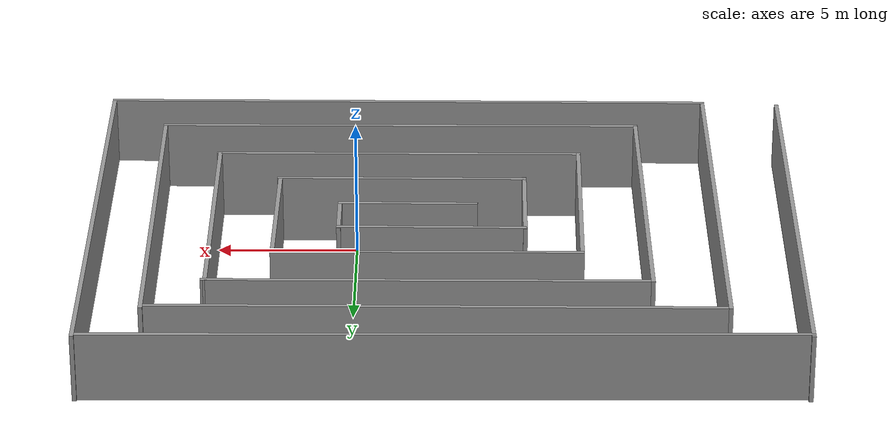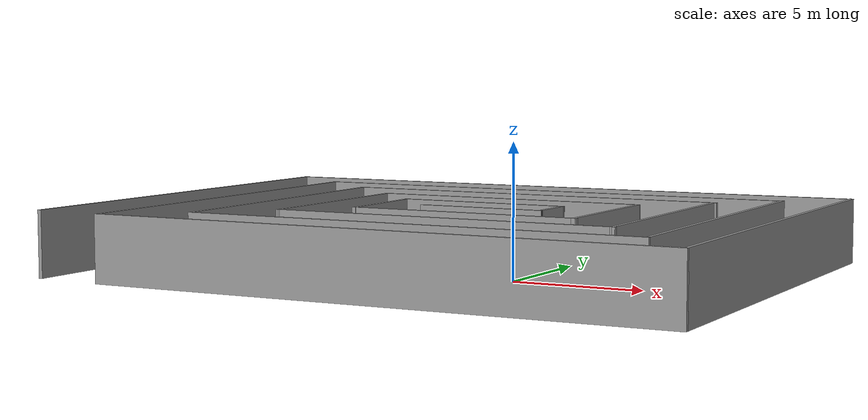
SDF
<sdf version='1.5'>
    <model name='maze1'>
      <pose>-3.13122 1.72991 0 0 -0 0</pose>
      <link name='Wall_0'>
        <collision name='Wall_0_Collision'>
          <geometry>
            <box>
              <size>4.97837 0.15 2.5</size>
            </box>
          </geometry>
          <pose>0 0 1.25 0 -0 0</pose>
          <max_contacts>10</max_contacts>
          <surface>
            <contact>
              <ode/>
            </contact>
            <bounce/>
            <friction>
              <torsional>
                <ode/>
              </torsional>
              <ode/>
            </friction>
          </surface>
        </collision>
        <visual name='Wall_0_Visual'>
          <pose>0 0 1.25 0 -0 0</pose>
          <geometry>
            <box>
              <size>4.97837 0.15 2.5</size>
            </box>
          </geometry>
          <material>
            <script>
              <uri>file://media/materials/scripts/gazebo.material</uri>
              <name>Gazebo/Grey</name>
            </script>
            <ambient>1 1 1 1</ambient>
          </material>
          <meta>
            <layer>0</layer>
          </meta>
        </visual>
        <pose>1.27156 -0.661161 0 0 -0 -0.008379</pose>
        <self_collide>0</self_collide>
        <enable_wind>0</enable_wind>
        <kinematic>0</kinematic>
      </link>
      <link name='Wall_1'>
        <collision name='Wall_1_Collision'>
          <geometry>
            <box>
              <size>2 0.15 2.5</size>
            </box>
          </geometry>
          <pose>0 0 1.25 0 -0 0</pose>
          <max_contacts>10</max_contacts>
          <surface>
            <contact>
              <ode/>
            </contact>
            <bounce/>
            <friction>
              <torsional>
                <ode/>
              </torsional>
              <ode/>
            </friction>
          </surface>
        </collision>
        <visual name='Wall_1_Visual'>
          <pose>0 0 1.25 0 -0 0</pose>
          <geometry>
            <box>
              <size>2 0.15 2.5</size>
            </box>
          </geometry>
          <material>
            <script>
              <uri>file://media/materials/scripts/gazebo.material</uri>
              <name>Gazebo/Grey</name>
            </script>
            <ambient>1 1 1 1</ambient>
          </material>
          <meta>
            <layer>0</layer>
          </meta>
        </visual>
        <pose>3.68566 0.284067 0 0 -0 1.5708</pose>
        <self_collide>0</self_collide>
        <enable_wind>0</enable_wind>
        <kinematic>0</kinematic>
      </link>
      <link name='Wall_10'>
        <collision name='Wall_10_Collision'>
          <geometry>
            <box>
              <size>15.5187 0.15 2.5</size>
            </box>
          </geometry>
          <pose>0 0 1.25 0 -0 0</pose>
          <max_contacts>10</max_contacts>
          <surface>
            <contact>
              <ode/>
            </contact>
            <bounce/>
            <friction>
              <torsional>
                <ode/>
              </torsional>
              <ode/>
            </friction>
          </surface>
        </collision>
        <visual name='Wall_10_Visual'>
          <pose>0 0 1.25 0 -0 0</pose>
          <geometry>
            <box>
              <size>15.5187 0.15 2.5</size>
            </box>
          </geometry>
          <material>
            <script>
              <uri>file://media/materials/scripts/gazebo.material</uri>
              <name>Gazebo/Grey</name>
            </script>
            <ambient>1 1 1 1</ambient>
          </material>
          <meta>
            <layer>0</layer>
          </meta>
        </visual>
        <pose>0.54179 5.17137 0 0 -0 3.14159</pose>
        <self_collide>0</self_collide>
        <enable_wind>0</enable_wind>
        <kinematic>0</kinematic>
      </link>
      <link name='Wall_11'>
        <collision name='Wall_11_Collision'>
          <geometry>
            <box>
              <size>12.2688 0.15 2.5</size>
            </box>
          </geometry>
          <pose>0 0 1.25 0 -0 0</pose>
          <max_contacts>10</max_contacts>
          <surface>
            <contact>
              <ode/>
            </contact>
            <bounce/>
            <friction>
              <torsional>
                <ode/>
              </torsional>
              <ode/>
            </friction>
          </surface>
        </collision>
        <visual name='Wall_11_Visual'>
          <pose>0 0 1.25 0 -0 0</pose>
          <geometry>
            <box>
              <size>12.2688 0.15 2.5</size>
            </box>
          </geometry>
          <material>
            <script>
              <uri>file://media/materials/scripts/gazebo.material</uri>
              <name>Gazebo/Grey</name>
            </script>
            <ambient>1 1 1 1</ambient>
          </material>
          <meta>
            <layer>0</layer>
          </meta>
        </visual>
        <pose>-7.14254 -0.887464 0 0 -0 -1.55737</pose>
        <self_collide>0</self_collide>
        <enable_wind>0</enable_wind>
        <kinematic>0</kinematic>
      </link>
      <link name='Wall_12'>
        <collision name='Wall_12_Collision'>
          <geometry>
            <box>
              <size>17.5585 0.15 2.5</size>
            </box>
          </geometry>
          <pose>0 0 1.25 0 -0 0</pose>
          <max_contacts>10</max_contacts>
          <surface>
            <contact>
              <ode/>
            </contact>
            <bounce/>
            <friction>
              <torsional>
                <ode/>
              </torsional>
              <ode/>
            </friction>
          </surface>
        </collision>
        <visual name='Wall_12_Visual'>
          <pose>0 0 1.25 0 -0 0</pose>
          <geometry>
            <box>
              <size>17.5585 0.15 2.5</size>
            </box>
          </geometry>
          <material>
            <script>
              <uri>file://media/materials/scripts/gazebo.material</uri>
              <name>Gazebo/Grey</name>
            </script>
            <ambient>1 1 1 1</ambient>
          </material>
          <meta>
            <layer>0</layer>
          </meta>
        </visual>
        <pose>1.64305 -7.01745 0 0 -0 0.001174</pose>
        <self_collide>0</self_collide>
        <enable_wind>0</enable_wind>
        <kinematic>0</kinematic>
      </link>
      <link name='Wall_13'>
        <collision name='Wall_13_Collision'>
          <geometry>
            <box>
              <size>14.1752 0.15 2.5</size>
            </box>
          </geometry>
          <pose>0 0 1.25 0 -0 0</pose>
          <max_contacts>10</max_contacts>
          <surface>
            <contact>
              <ode/>
            </contact>
            <bounce/>
            <friction>
              <torsional>
                <ode/>
              </torsional>
              <ode/>
            </friction>
          </surface>
        </collision>
        <visual name='Wall_13_Visual'>
          <pose>0 0 1.25 0 -0 0</pose>
          <geometry>
            <box>
              <size>14.1752 0.15 2.5</size>
            </box>
          </geometry>
          <material>
            <script>
              <uri>file://media/materials/scripts/gazebo.material</uri>
              <name>Gazebo/Grey</name>
            </script>
            <ambient>1 1 1 1</ambient>
          </material>
          <meta>
            <layer>0</layer>
          </meta>
        </visual>
        <pose>10.2758 0.128791 0 0 -0 1.58099</pose>
        <self_collide>0</self_collide>
        <enable_wind>0</enable_wind>
        <kinematic>0</kinematic>
      </link>
      <link name='Wall_14'>
        <collision name='Wall_14_Collision'>
          <geometry>
            <box>
              <size>19.9995 0.15 2.5</size>
            </box>
          </geometry>
          <pose>0 0 1.25 0 -0 0</pose>
          <max_contacts>10</max_contacts>
          <surface>
            <contact>
              <ode/>
            </contact>
            <bounce/>
            <friction>
              <torsional>
                <ode/>
              </torsional>
              <ode/>
            </friction>
          </surface>
        </collision>
        <visual name='Wall_14_Visual'>
          <pose>0 0 1.25 0 -0 0</pose>
          <geometry>
            <box>
              <size>19.9995 0.15 2.5</size>
            </box>
          </geometry>
          <material>
            <script>
              <uri>file://media/materials/scripts/gazebo.material</uri>
              <name>Gazebo/Grey</name>
            </script>
            <ambient>1 1 1 1</ambient>
          </material>
          <meta>
            <layer>0</layer>
          </meta>
        </visual>
        <pose>0.279674 7.04776 0 0 -0 3.13852</pose>
        <self_collide>0</self_collide>
        <enable_wind>0</enable_wind>
        <kinematic>0</kinematic>
      </link>
      <link name='Wall_15'>
        <collision name='Wall_15_Collision'>
          <geometry>
            <box>
              <size>16.1555 0.15 2.5</size>
            </box>
          </geometry>
          <pose>0 0 1.25 0 -0 0</pose>
          <max_contacts>10</max_contacts>
          <surface>
            <contact>
              <ode/>
            </contact>
            <bounce/>
            <friction>
              <torsional>
                <ode/>
              </torsional>
              <ode/>
            </friction>
          </surface>
        </collision>
        <visual name='Wall_15_Visual'>
          <pose>0 0 1.25 0 -0 0</pose>
          <geometry>
            <box>
              <size>16.1555 0.15 2.5</size>
            </box>
          </geometry>
          <material>
            <script>
              <uri>file://media/materials/scripts/gazebo.material</uri>
              <name>Gazebo/Grey</name>
            </script>
            <ambient>1 1 1 1</ambient>
          </material>
          <meta>
            <layer>0</layer>
          </meta>
        </visual>
        <pose>-9.70691 -0.924299 0 0 -0 -1.56306</pose>
        <self_collide>0</self_collide>
        <enable_wind>0</enable_wind>
        <kinematic>0</kinematic>
      </link>
      <link name='Wall_16'>
        <collision name='Wall_16_Collision'>
          <geometry>
            <box>
              <size>22.2126 0.15 2.5</size>
            </box>
          </geometry>
          <pose>0 0 1.25 0 -0 0</pose>
          <max_contacts>10</max_contacts>
          <surface>
            <contact>
              <ode/>
            </contact>
            <bounce/>
            <friction>
              <torsional>
                <ode/>
              </torsional>
              <ode/>
            </friction>
          </surface>
        </collision>
        <visual name='Wall_16_Visual'>
          <pose>0 0 1.25 0 -0 0</pose>
          <geometry>
            <box>
              <size>22.2126 0.15 2.5</size>
            </box>
          </geometry>
          <material>
            <script>
              <uri>file://media/materials/scripts/gazebo.material</uri>
              <name>Gazebo/Grey</name>
            </script>
            <ambient>1 1 1 1</ambient>
          </material>
          <meta>
            <layer>0</layer>
          </meta>
        </visual>
        <pose>1.38616 -9.09817 0 0 -0 -0.004315</pose>
        <self_collide>0</self_collide>
        <enable_wind>0</enable_wind>
        <kinematic>0</kinematic>
      </link>
      <link name='Wall_17'>
        <collision name='Wall_17_Collision'>
          <geometry>
            <box>
              <size>18.318 0.15 2.5</size>
            </box>
          </geometry>
          <pose>0 0 1.25 0 -0 0</pose>
          <max_contacts>10</max_contacts>
          <surface>
            <contact>
              <ode/>
            </contact>
            <bounce/>
            <friction>
              <torsional>
                <ode/>
              </torsional>
              <ode/>
            </friction>
          </surface>
        </collision>
        <visual name='Wall_17_Visual'>
          <pose>0 0 1.25 0 -0 0</pose>
          <geometry>
            <box>
              <size>18.318 0.15 2.5</size>
            </box>
          </geometry>
          <material>
            <script>
              <uri>file://media/materials/scripts/gazebo.material</uri>
              <name>Gazebo/Grey</name>
            </script>
            <ambient>1 1 1 1</ambient>
          </material>
          <meta>
            <layer>0</layer>
          </meta>
        </visual>
        <pose>12.3767 0.061871 0 0 -0 1.57527</pose>
        <self_collide>0</self_collide>
        <enable_wind>0</enable_wind>
        <kinematic>0</kinematic>
      </link>
      <link name='Wall_18'>
        <collision name='Wall_18_Collision'>
          <geometry>
            <box>
              <size>24.9035 0.15 2.5</size>
            </box>
          </geometry>
          <pose>0 0 1.25 0 -0 0</pose>
          <max_contacts>10</max_contacts>
          <surface>
            <contact>
              <ode/>
            </contact>
            <bounce/>
            <friction>
              <torsional>
                <ode/>
              </torsional>
              <ode/>
            </friction>
          </surface>
        </collision>
        <visual name='Wall_18_Visual'>
          <pose>0 0 1.25 0 -0 0</pose>
          <geometry>
            <box>
              <size>24.9035 0.15 2.5</size>
            </box>
          </geometry>
          <material>
            <script>
              <uri>file://media/materials/scripts/gazebo.material</uri>
              <name>Gazebo/Grey</name>
            </script>
            <ambient>1 1 1 1</ambient>
          </material>
          <meta>
            <layer>0</layer>
          </meta>
        </visual>
        <pose>-0.040734 8.98375 0 0 -0 -3.13508</pose>
        <self_collide>0</self_collide>
        <enable_wind>0</enable_wind>
        <kinematic>0</kinematic>
      </link>
      <link name='Wall_19'>
        <collision name='Wall_19_Collision'>
          <geometry>
            <box>
              <size>18 0.15 2.5</size>
            </box>
          </geometry>
          <pose>0 0 1.25 0 -0 0</pose>
          <max_contacts>10</max_contacts>
          <surface>
            <contact>
              <ode/>
            </contact>
            <bounce/>
            <friction>
              <torsional>
                <ode/>
              </torsional>
              <ode/>
            </friction>
          </surface>
        </collision>
        <visual name='Wall_19_Visual'>
          <pose>0 0 1.25 0 -0 0</pose>
          <geometry>
            <box>
              <size>18 0.15 2.5</size>
            </box>
          </geometry>
          <material>
            <script>
              <uri>file://media/materials/scripts/gazebo.material</uri>
              <name>Gazebo/Grey</name>
            </script>
            <ambient>1 1 1 1</ambient>
          </material>
          <meta>
            <layer>0</layer>
          </meta>
        </visual>
        <pose>-12.4174 0.101866 0 0 -0 -1.5708</pose>
        <self_collide>0</self_collide>
        <enable_wind>0</enable_wind>
        <kinematic>0</kinematic>
      </link>
      <link name='Wall_2'>
        <collision name='Wall_2_Collision'>
          <geometry>
            <box>
              <size>6.72832 0.15 2.5</size>
            </box>
          </geometry>
          <pose>0 0 1.25 0 -0 0</pose>
          <max_contacts>10</max_contacts>
          <surface>
            <contact>
              <ode/>
            </contact>
            <bounce/>
            <friction>
              <torsional>
                <ode/>
              </torsional>
              <ode/>
            </friction>
          </surface>
        </collision>
        <visual name='Wall_2_Visual'>
          <pose>0 0 1.25 0 -0 0</pose>
          <geometry>
            <box>
              <size>6.72832 0.15 2.5</size>
            </box>
          </geometry>
          <material>
            <script>
              <uri>file://media/materials/scripts/gazebo.material</uri>
              <name>Gazebo/Grey</name>
            </script>
            <ambient>1 1 1 1</ambient>
          </material>
          <meta>
            <layer>0</layer>
          </meta>
        </visual>
        <pose>0.396563 1.18884 0 0 -0 3.13544</pose>
        <self_collide>0</self_collide>
        <enable_wind>0</enable_wind>
        <kinematic>0</kinematic>
      </link>
      <link name='Wall_3'>
        <collision name='Wall_3_Collision'>
          <geometry>
            <box>
              <size>4.05911 0.15 2.5</size>
            </box>
          </geometry>
          <pose>0 0 1.25 0 -0 0</pose>
          <max_contacts>10</max_contacts>
          <surface>
            <contact>
              <ode/>
            </contact>
            <bounce/>
            <friction>
              <torsional>
                <ode/>
              </torsional>
              <ode/>
            </friction>
          </surface>
        </collision>
        <visual name='Wall_3_Visual'>
          <pose>0 0 1.25 0 -0 0</pose>
          <geometry>
            <box>
              <size>4.05911 0.15 2.5</size>
            </box>
          </geometry>
          <material>
            <script>
              <uri>file://media/materials/scripts/gazebo.material</uri>
              <name>Gazebo/Grey</name>
            </script>
            <ambient>1 1 1 1</ambient>
          </material>
          <meta>
            <layer>0</layer>
          </meta>
        </visual>
        <pose>-2.89254 -0.705034 0 0 -0 -1.5708</pose>
        <self_collide>0</self_collide>
        <enable_wind>0</enable_wind>
        <kinematic>0</kinematic>
      </link>
      <link name='Wall_4'>
        <collision name='Wall_4_Collision'>
          <geometry>
            <box>
              <size>8.97829 0.15 2.5</size>
            </box>
          </geometry>
          <pose>0 0 1.25 0 -0 0</pose>
          <max_contacts>10</max_contacts>
          <surface>
            <contact>
              <ode/>
            </contact>
            <bounce/>
            <friction>
              <torsional>
                <ode/>
              </torsional>
              <ode/>
            </friction>
          </surface>
        </collision>
        <visual name='Wall_4_Visual'>
          <pose>0 0 1.25 0 -0 0</pose>
          <geometry>
            <box>
              <size>8.97829 0.15 2.5</size>
            </box>
          </geometry>
          <material>
            <script>
              <uri>file://media/materials/scripts/gazebo.material</uri>
              <name>Gazebo/Grey</name>
            </script>
            <ambient>1 1 1 1</ambient>
          </material>
          <meta>
            <layer>0</layer>
          </meta>
        </visual>
        <pose>1.52156 -2.63936 0 0 -0 -0.004583</pose>
        <self_collide>0</self_collide>
        <enable_wind>0</enable_wind>
        <kinematic>0</kinematic>
      </link>
      <link name='Wall_5'>
        <collision name='Wall_5_Collision'>
          <geometry>
            <box>
              <size>5.81917 0.15 2.5</size>
            </box>
          </geometry>
          <pose>0 0 1.25 0 -0 0</pose>
          <max_contacts>10</max_contacts>
          <surface>
            <contact>
              <ode/>
            </contact>
            <bounce/>
            <friction>
              <torsional>
                <ode/>
              </torsional>
              <ode/>
            </friction>
          </surface>
        </collision>
        <visual name='Wall_5_Visual'>
          <pose>0 0 1.25 0 -0 0</pose>
          <geometry>
            <box>
              <size>5.81917 0.15 2.5</size>
            </box>
          </geometry>
          <material>
            <script>
              <uri>file://media/materials/scripts/gazebo.material</uri>
              <name>Gazebo/Grey</name>
            </script>
            <ambient>1 1 1 1</ambient>
          </material>
          <meta>
            <layer>0</layer>
          </meta>
        </visual>
        <pose>5.91544 0.174925 0 0 -0 1.56366</pose>
        <self_collide>0</self_collide>
        <enable_wind>0</enable_wind>
        <kinematic>0</kinematic>
      </link>
      <link name='Wall_6'>
        <collision name='Wall_6_Collision'>
          <geometry>
            <box>
              <size>10.9377 0.15 2.5</size>
            </box>
          </geometry>
          <pose>0 0 1.25 0 -0 0</pose>
          <max_contacts>10</max_contacts>
          <surface>
            <contact>
              <ode/>
            </contact>
            <bounce/>
            <friction>
              <torsional>
                <ode/>
              </torsional>
              <ode/>
            </friction>
          </surface>
        </collision>
        <visual name='Wall_6_Visual'>
          <pose>0 0 1.25 0 -0 0</pose>
          <geometry>
            <box>
              <size>10.9377 0.15 2.5</size>
            </box>
          </geometry>
          <material>
            <script>
              <uri>file://media/materials/scripts/gazebo.material</uri>
              <name>Gazebo/Grey</name>
            </script>
            <ambient>1 1 1 1</ambient>
          </material>
          <meta>
            <layer>0</layer>
          </meta>
        </visual>
        <pose>0.54179 3.07097 0 0 -0 3.14159</pose>
        <self_collide>0</self_collide>
        <enable_wind>0</enable_wind>
        <kinematic>0</kinematic>
      </link>
      <link name='Wall_7'>
        <collision name='Wall_7_Collision'>
          <geometry>
            <box>
              <size>7.8264 0.15 2.5</size>
            </box>
          </geometry>
          <pose>0 0 1.25 0 -0 0</pose>
          <max_contacts>10</max_contacts>
          <surface>
            <contact>
              <ode/>
            </contact>
            <bounce/>
            <friction>
              <torsional>
                <ode/>
              </torsional>
              <ode/>
            </friction>
          </surface>
        </collision>
        <visual name='Wall_7_Visual'>
          <pose>0 0 1.25 0 -0 0</pose>
          <geometry>
            <box>
              <size>7.8264 0.15 2.5</size>
            </box>
          </geometry>
          <material>
            <script>
              <uri>file://media/materials/scripts/gazebo.material</uri>
              <name>Gazebo/Grey</name>
            </script>
            <ambient>1 1 1 1</ambient>
          </material>
          <meta>
            <layer>0</layer>
          </meta>
        </visual>
        <pose>-4.87231 -0.828708 0 0 -0 -1.57607</pose>
        <self_collide>0</self_collide>
        <enable_wind>0</enable_wind>
        <kinematic>0</kinematic>
      </link>
      <link name='Wall_8'>
        <collision name='Wall_8_Collision'>
          <geometry>
            <box>
              <size>13.2687 0.15 2.5</size>
            </box>
          </geometry>
          <pose>0 0 1.25 0 -0 0</pose>
          <max_contacts>10</max_contacts>
          <surface>
            <contact>
              <ode/>
            </contact>
            <bounce/>
            <friction>
              <torsional>
                <ode/>
              </torsional>
              <ode/>
            </friction>
          </surface>
        </collision>
        <visual name='Wall_8_Visual'>
          <pose>0 0 1.25 0 -0 0</pose>
          <geometry>
            <box>
              <size>13.2687 0.15 2.5</size>
            </box>
          </geometry>
          <material>
            <script>
              <uri>file://media/materials/scripts/gazebo.material</uri>
              <name>Gazebo/Grey</name>
            </script>
            <ambient>1 1 1 1</ambient>
          </material>
          <meta>
            <layer>0</layer>
          </meta>
        </visual>
        <pose>1.66679 -4.66686 0 0 -0 0</pose>
        <self_collide>0</self_collide>
        <enable_wind>0</enable_wind>
        <kinematic>0</kinematic>
      </link>
      <link name='Wall_9'>
        <collision name='Wall_9_Collision'>
          <geometry>
            <box>
              <size>9.98831 0.15 2.5</size>
            </box>
          </geometry>
          <pose>0 0 1.25 0 -0 0</pose>
          <max_contacts>10</max_contacts>
          <surface>
            <contact>
              <ode/>
            </contact>
            <bounce/>
            <friction>
              <torsional>
                <ode/>
              </torsional>
              <ode/>
            </friction>
          </surface>
        </collision>
        <visual name='Wall_9_Visual'>
          <pose>0 0 1.25 0 -0 0</pose>
          <geometry>
            <box>
              <size>9.98831 0.15 2.5</size>
            </box>
          </geometry>
          <material>
            <script>
              <uri>file://media/materials/scripts/gazebo.material</uri>
              <name>Gazebo/Grey</name>
            </script>
            <ambient>1 1 1 1</ambient>
          </material>
          <meta>
            <layer>0</layer>
          </meta>
        </visual>
        <pose>8.16521 0.252256 0 0 -0 1.57496</pose>
        <self_collide>0</self_collide>
        <enable_wind>0</enable_wind>
        <kinematic>0</kinematic>
      </link>
      <static>1</static>
    </model>
      <model name='maze1'>
        <pose>-3.13122 1.72991 0 0 -0 0</pose>
        <scale>1 1 1</scale>
        <link name='Wall_0'>
          <pose>-1.85966 1.06875 0 0 0 -0.008379</pose>
          <velocity>0 0 0 0 -0 0</velocity>
          <acceleration>0 0 0 0 -0 0</acceleration>
          <wrench>0 0 0 0 -0 0</wrench>
        </link>
        <link name='Wall_1'>
          <pose>0.55444 2.01398 0 0 -0 1.5708</pose>
          <velocity>0 0 0 0 -0 0</velocity>
          <acceleration>0 0 0 0 -0 0</acceleration>
          <wrench>0 0 0 0 -0 0</wrench>
        </link>
        <link name='Wall_10'>
          <pose>-2.58943 6.90128 0 0 -0 3.14159</pose>
          <velocity>0 0 0 0 -0 0</velocity>
          <acceleration>0 0 0 0 -0 0</acceleration>
          <wrench>0 0 0 0 -0 0</wrench>
        </link>
        <link name='Wall_11'>
          <pose>-10.2738 0.842446 0 0 0 -1.55737</pose>
          <velocity>0 0 0 0 -0 0</velocity>
          <acceleration>0 0 0 0 -0 0</acceleration>
          <wrench>0 0 0 0 -0 0</wrench>
        </link>
        <link name='Wall_12'>
          <pose>-1.48817 -5.28754 0 0 -0 0.001174</pose>
          <velocity>0 0 0 0 -0 0</velocity>
          <acceleration>0 0 0 0 -0 0</acceleration>
          <wrench>0 0 0 0 -0 0</wrench>
        </link>
        <link name='Wall_13'>
          <pose>7.14458 1.8587 0 0 -0 1.58099</pose>
          <velocity>0 0 0 0 -0 0</velocity>
          <acceleration>0 0 0 0 -0 0</acceleration>
          <wrench>0 0 0 0 -0 0</wrench>
        </link>
        <link name='Wall_14'>
          <pose>-2.85155 8.77767 0 0 -0 3.13852</pose>
          <velocity>0 0 0 0 -0 0</velocity>
          <acceleration>0 0 0 0 -0 0</acceleration>
          <wrench>0 0 0 0 -0 0</wrench>
        </link>
        <link name='Wall_15'>
          <pose>-12.8381 0.805611 0 0 0 -1.56306</pose>
          <velocity>0 0 0 0 -0 0</velocity>
          <acceleration>0 0 0 0 -0 0</acceleration>
          <wrench>0 0 0 0 -0 0</wrench>
        </link>
        <link name='Wall_16'>
          <pose>-1.74506 -7.36826 0 0 0 -0.004315</pose>
          <velocity>0 0 0 0 -0 0</velocity>
          <acceleration>0 0 0 0 -0 0</acceleration>
          <wrench>0 0 0 0 -0 0</wrench>
        </link>
        <link name='Wall_17'>
          <pose>9.24548 1.79178 0 0 -0 1.57527</pose>
          <velocity>0 0 0 0 -0 0</velocity>
          <acceleration>0 0 0 0 -0 0</acceleration>
          <wrench>0 0 0 0 -0 0</wrench>
        </link>
        <link name='Wall_18'>
          <pose>-3.17195 10.7137 0 0 0 -3.13508</pose>
          <velocity>0 0 0 0 -0 0</velocity>
          <acceleration>0 0 0 0 -0 0</acceleration>
          <wrench>0 0 0 0 -0 0</wrench>
        </link>
        <link name='Wall_19'>
          <pose>-15.5486 1.83178 0 0 0 -1.5708</pose>
          <velocity>0 0 0 0 -0 0</velocity>
          <acceleration>0 0 0 0 -0 0</acceleration>
          <wrench>0 0 0 0 -0 0</wrench>
        </link>
        <link name='Wall_2'>
          <pose>-2.73466 2.91875 0 0 -0 3.13544</pose>
          <velocity>0 0 0 0 -0 0</velocity>
          <acceleration>0 0 0 0 -0 0</acceleration>
          <wrench>0 0 0 0 -0 0</wrench>
        </link>
        <link name='Wall_3'>
          <pose>-6.02376 1.02488 0 0 0 -1.5708</pose>
          <velocity>0 0 0 0 -0 0</velocity>
          <acceleration>0 0 0 0 -0 0</acceleration>
          <wrench>0 0 0 0 -0 0</wrench>
        </link>
        <link name='Wall_4'>
          <pose>-1.60966 -0.90945 0 0 0 -0.004583</pose>
          <velocity>0 0 0 0 -0 0</velocity>
          <acceleration>0 0 0 0 -0 0</acceleration>
          <wrench>0 0 0 0 -0 0</wrench>
        </link>
        <link name='Wall_5'>
          <pose>2.78422 1.90484 0 0 -0 1.56366</pose>
          <velocity>0 0 0 0 -0 0</velocity>
          <acceleration>0 0 0 0 -0 0</acceleration>
          <wrench>0 0 0 0 -0 0</wrench>
        </link>
        <link name='Wall_6'>
          <pose>-2.58943 4.80088 0 0 -0 3.14159</pose>
          <velocity>0 0 0 0 -0 0</velocity>
          <acceleration>0 0 0 0 -0 0</acceleration>
          <wrench>0 0 0 0 -0 0</wrench>
        </link>
        <link name='Wall_7'>
          <pose>-8.00353 0.901202 0 0 0 -1.57607</pose>
          <velocity>0 0 0 0 -0 0</velocity>
          <acceleration>0 0 0 0 -0 0</acceleration>
          <wrench>0 0 0 0 -0 0</wrench>
        </link>
        <link name='Wall_8'>
          <pose>-1.46443 -2.93695 0 0 -0 0</pose>
          <velocity>0 0 0 0 -0 0</velocity>
          <acceleration>0 0 0 0 -0 0</acceleration>
          <wrench>0 0 0 0 -0 0</wrench>
        </link>
        <link name='Wall_9'>
          <pose>5.03399 1.98217 0 0 -0 1.57496</pose>
          <velocity>0 0 0 0 -0 0</velocity>
          <acceleration>0 0 0 0 -0 0</acceleration>
          <wrench>0 0 0 0 -0 0</wrench>
        </link>
      </model>
</sdf>
